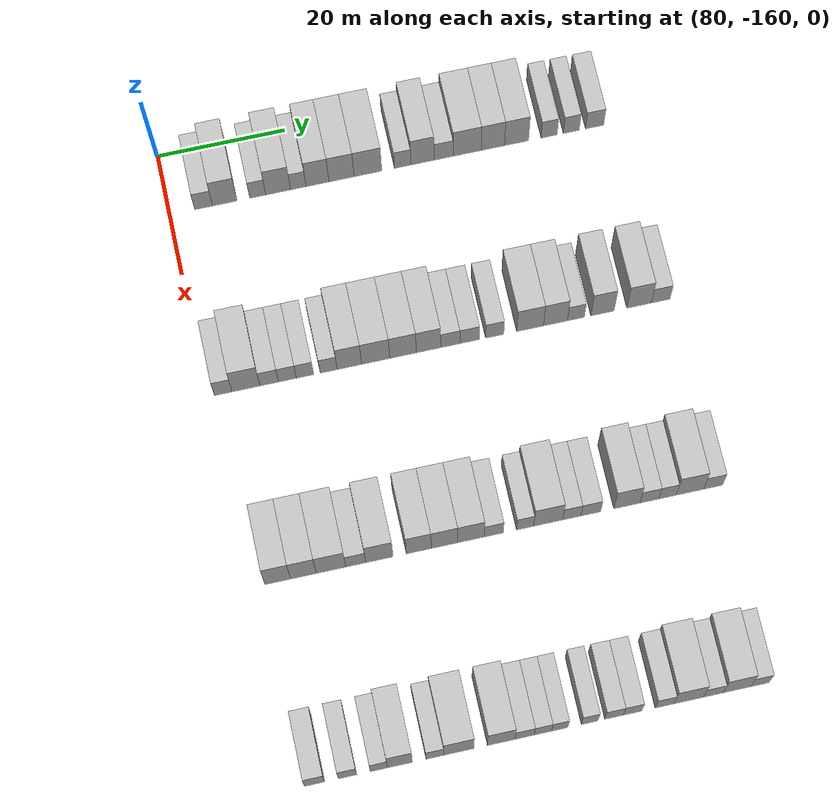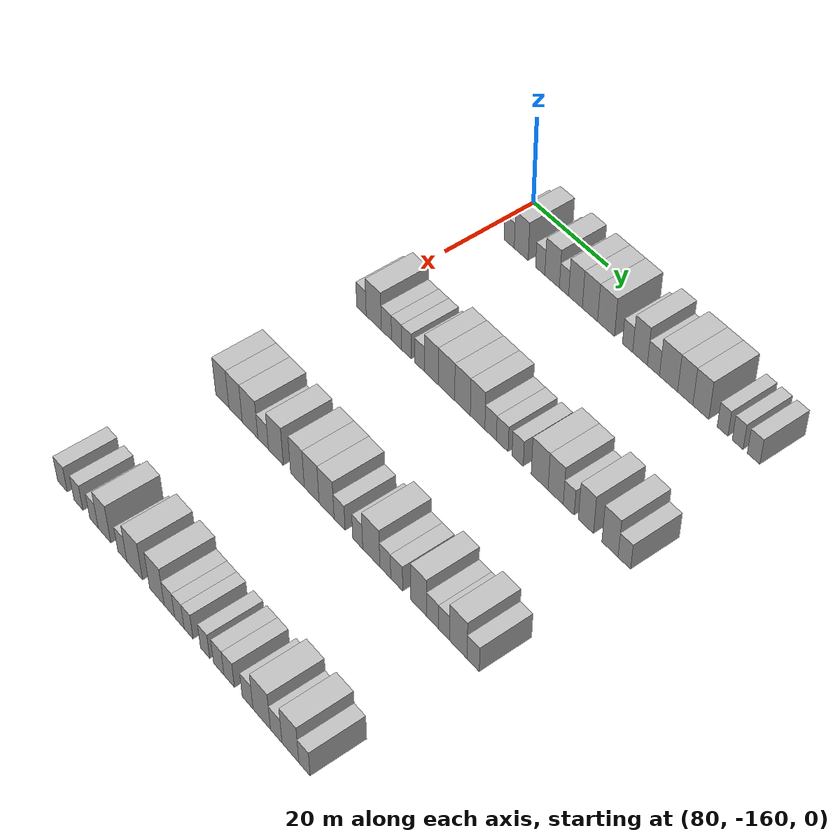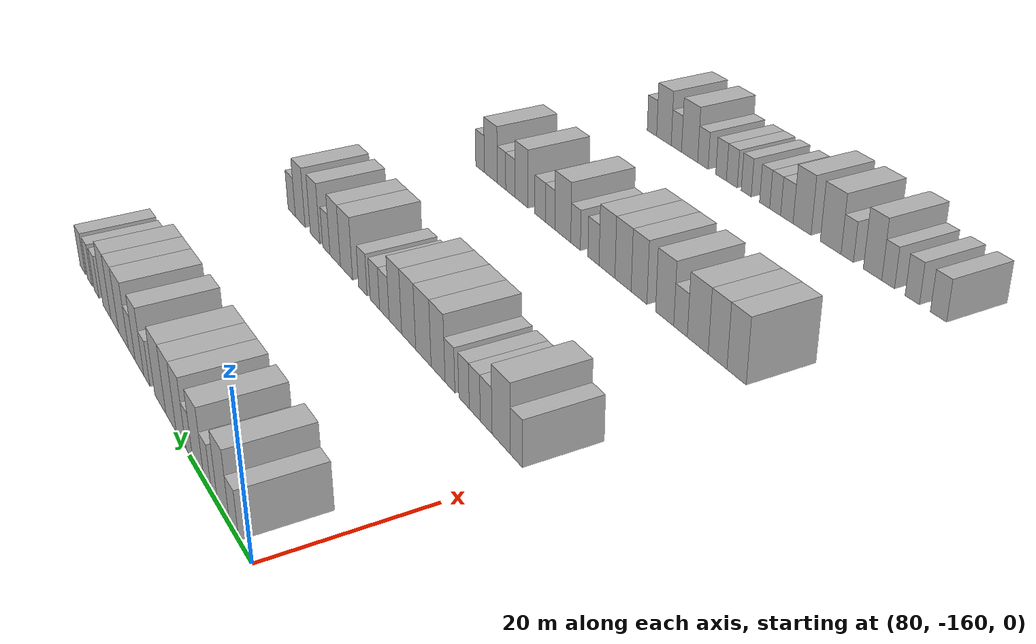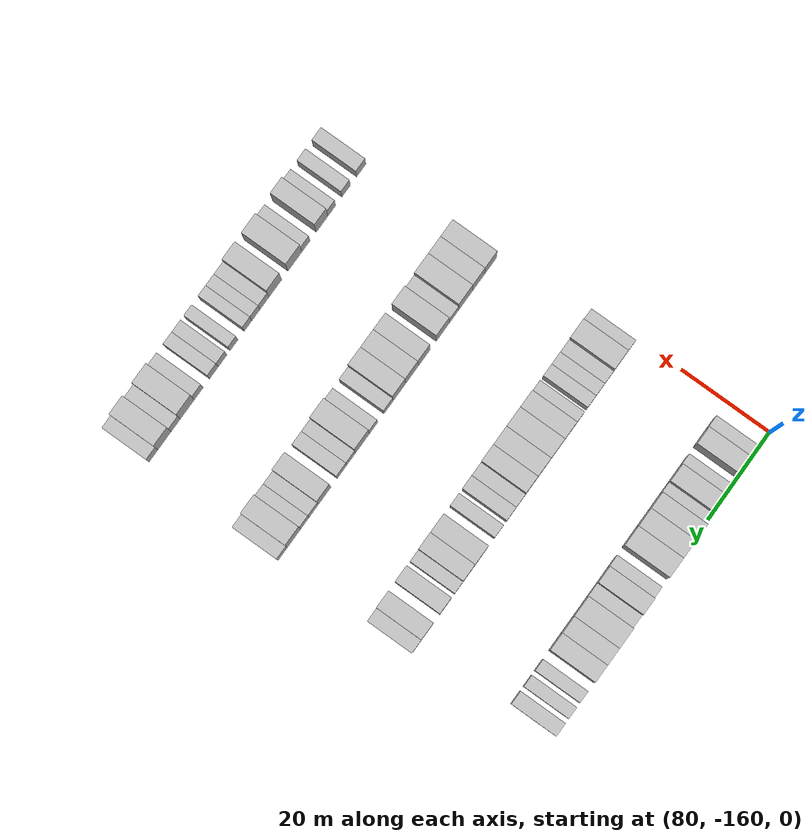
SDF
<sdf version="1.6">
 <world name="default">
  <model name="building_521">
   <static>1</static>
   <pose>85.0000 -154.6689 0 0.000000 0.000000 0.000000</pose>
   <link name="link">
    <pose>0 0 3.00 0 0 0</pose>
    <collision name="collision"><geometry><box><size>10.0000 2.7966 6.0000</size></box></geometry></collision>
    <visual name="visual">
     <cast_shadows>0</cast_shadows>
     <geometry><box><size>10.0000 2.7966 6.0000</size></box></geometry>
     <material>
      <script>
       <uri>model://HANNAS_wall/materials/scripts</uri>
       <uri>model://HANNAS_wall/materials/textures</uri>
       <name>vrc/HANNAS_wall</name>
      </script>
     </material>
    </visual>
   </link>
  </model>
  <model name="building_522">
   <static>1</static>
   <pose>85.0000 -151.3631 0 0.000000 0.000000 0.000000</pose>
   <link name="link">
    <pose>0 0 4.50 0 0 0</pose>
    <collision name="collision"><geometry><box><size>10.0000 3.8148 9.0000</size></box></geometry></collision>
    <visual name="visual">
     <cast_shadows>0</cast_shadows>
     <geometry><box><size>10.0000 3.8148 9.0000</size></box></geometry>
     <material>
      <script>
       <uri>model://HANNAS_wall/materials/scripts</uri>
       <uri>model://HANNAS_wall/materials/textures</uri>
       <name>vrc/HANNAS_wall</name>
      </script>
     </material>
    </visual>
   </link>
  </model>
  <model name="building_523">
   <static>1</static>
   <pose>85.0000 -146.2067 0 0.000000 0.000000 0.000000</pose>
   <link name="link">
    <pose>0 0 3.00 0 0 0</pose>
    <collision name="collision"><geometry><box><size>10.0000 2.4981 6.0000</size></box></geometry></collision>
    <visual name="visual">
     <cast_shadows>0</cast_shadows>
     <geometry><box><size>10.0000 2.4981 6.0000</size></box></geometry>
     <material>
      <script>
       <uri>model://HANNAS_wall/materials/scripts</uri>
       <uri>model://HANNAS_wall/materials/textures</uri>
       <name>vrc/HANNAS_wall</name>
      </script>
     </material>
    </visual>
   </link>
  </model>
  <model name="building_524">
   <static>1</static>
   <pose>85.0000 -143.0126 0 0.000000 0.000000 0.000000</pose>
   <link name="link">
    <pose>0 0 4.50 0 0 0</pose>
    <collision name="collision"><geometry><box><size>10.0000 3.8899 9.0000</size></box></geometry></collision>
    <visual name="visual">
     <cast_shadows>0</cast_shadows>
     <geometry><box><size>10.0000 3.8899 9.0000</size></box></geometry>
     <material>
      <script>
       <uri>model://HANNAS_wall/materials/scripts</uri>
       <uri>model://HANNAS_wall/materials/textures</uri>
       <name>vrc/HANNAS_wall</name>
      </script>
     </material>
    </visual>
   </link>
  </model>
  <model name="building_525">
   <static>1</static>
   <pose>85.0000 -139.8485 0 0.000000 0.000000 0.000000</pose>
   <link name="link">
    <pose>0 0 3.00 0 0 0</pose>
    <collision name="collision"><geometry><box><size>10.0000 2.4385 6.0000</size></box></geometry></collision>
    <visual name="visual">
     <cast_shadows>0</cast_shadows>
     <geometry><box><size>10.0000 2.4385 6.0000</size></box></geometry>
     <material>
      <script>
       <uri>model://HANNAS_wall/materials/scripts</uri>
       <uri>model://HANNAS_wall/materials/textures</uri>
       <name>vrc/HANNAS_wall</name>
      </script>
     </material>
    </visual>
   </link>
  </model>
  <model name="building_526">
   <static>1</static>
   <pose>85.0000 -136.8250 0 0.000000 0.000000 0.000000</pose>
   <link name="link">
    <pose>0 0 4.50 0 0 0</pose>
    <collision name="collision"><geometry><box><size>10.0000 3.6083 9.0000</size></box></geometry></collision>
    <visual name="visual">
     <cast_shadows>0</cast_shadows>
     <geometry><box><size>10.0000 3.6083 9.0000</size></box></geometry>
     <material>
      <script>
       <uri>model://HANNAS_wall/materials/scripts</uri>
       <uri>model://HANNAS_wall/materials/textures</uri>
       <name>vrc/HANNAS_wall</name>
      </script>
     </material>
    </visual>
   </link>
  </model>
  <model name="building_527">
   <static>1</static>
   <pose>85.0000 -133.0406 0 0.000000 0.000000 0.000000</pose>
   <link name="link">
    <pose>0 0 4.50 0 0 0</pose>
    <collision name="collision"><geometry><box><size>10.0000 3.9606 9.0000</size></box></geometry></collision>
    <visual name="visual">
     <cast_shadows>0</cast_shadows>
     <geometry><box><size>10.0000 3.9606 9.0000</size></box></geometry>
     <material>
      <script>
       <uri>model://HANNAS_wall/materials/scripts</uri>
       <uri>model://HANNAS_wall/materials/textures</uri>
       <name>vrc/HANNAS_wall</name>
      </script>
     </material>
    </visual>
   </link>
  </model>
  <model name="building_528">
   <static>1</static>
   <pose>85.0000 -128.8823 0 0.000000 0.000000 0.000000</pose>
   <link name="link">
    <pose>0 0 4.50 0 0 0</pose>
    <collision name="collision"><geometry><box><size>10.0000 4.3559 9.0000</size></box></geometry></collision>
    <visual name="visual">
     <cast_shadows>0</cast_shadows>
     <geometry><box><size>10.0000 4.3559 9.0000</size></box></geometry>
     <material>
      <script>
       <uri>model://HANNAS_wall/materials/scripts</uri>
       <uri>model://HANNAS_wall/materials/textures</uri>
       <name>vrc/HANNAS_wall</name>
      </script>
     </material>
    </visual>
   </link>
  </model>
  <model name="building_529">
   <static>1</static>
   <pose>85.0000 -123.4022 0 0.000000 0.000000 0.000000</pose>
   <link name="link">
    <pose>0 0 3.00 0 0 0</pose>
    <collision name="collision"><geometry><box><size>10.0000 2.6042 6.0000</size></box></geometry></collision>
    <visual name="visual">
     <cast_shadows>0</cast_shadows>
     <geometry><box><size>10.0000 2.6042 6.0000</size></box></geometry>
     <material>
      <script>
       <uri>model://HANNAS_wall/materials/scripts</uri>
       <uri>model://HANNAS_wall/materials/textures</uri>
       <name>vrc/HANNAS_wall</name>
      </script>
     </material>
    </visual>
   </link>
  </model>
  <model name="building_530">
   <static>1</static>
   <pose>85.0000 -120.2660 0 0.000000 0.000000 0.000000</pose>
   <link name="link">
    <pose>0 0 4.50 0 0 0</pose>
    <collision name="collision"><geometry><box><size>10.0000 3.6681 9.0000</size></box></geometry></collision>
    <visual name="visual">
     <cast_shadows>0</cast_shadows>
     <geometry><box><size>10.0000 3.6681 9.0000</size></box></geometry>
     <material>
      <script>
       <uri>model://HANNAS_wall/materials/scripts</uri>
       <uri>model://HANNAS_wall/materials/textures</uri>
       <name>vrc/HANNAS_wall</name>
      </script>
     </material>
    </visual>
   </link>
  </model>
  <model name="building_531">
   <static>1</static>
   <pose>85.0000 -116.9334 0 0.000000 0.000000 0.000000</pose>
   <link name="link">
    <pose>0 0 3.00 0 0 0</pose>
    <collision name="collision"><geometry><box><size>10.0000 2.9970 6.0000</size></box></geometry></collision>
    <visual name="visual">
     <cast_shadows>0</cast_shadows>
     <geometry><box><size>10.0000 2.9970 6.0000</size></box></geometry>
     <material>
      <script>
       <uri>model://HANNAS_wall/materials/scripts</uri>
       <uri>model://HANNAS_wall/materials/textures</uri>
       <name>vrc/HANNAS_wall</name>
      </script>
     </material>
    </visual>
   </link>
  </model>
  <model name="building_532">
   <static>1</static>
   <pose>85.0000 -113.2058 0 0.000000 0.000000 0.000000</pose>
   <link name="link">
    <pose>0 0 4.50 0 0 0</pose>
    <collision name="collision"><geometry><box><size>10.0000 4.4582 9.0000</size></box></geometry></collision>
    <visual name="visual">
     <cast_shadows>0</cast_shadows>
     <geometry><box><size>10.0000 4.4582 9.0000</size></box></geometry>
     <material>
      <script>
       <uri>model://HANNAS_wall/materials/scripts</uri>
       <uri>model://HANNAS_wall/materials/textures</uri>
       <name>vrc/HANNAS_wall</name>
      </script>
     </material>
    </visual>
   </link>
  </model>
  <model name="building_533">
   <static>1</static>
   <pose>85.0000 -109.1233 0 0.000000 0.000000 0.000000</pose>
   <link name="link">
    <pose>0 0 4.50 0 0 0</pose>
    <collision name="collision"><geometry><box><size>10.0000 3.7070 9.0000</size></box></geometry></collision>
    <visual name="visual">
     <cast_shadows>0</cast_shadows>
     <geometry><box><size>10.0000 3.7070 9.0000</size></box></geometry>
     <material>
      <script>
       <uri>model://HANNAS_wall/materials/scripts</uri>
       <uri>model://HANNAS_wall/materials/textures</uri>
       <name>vrc/HANNAS_wall</name>
      </script>
     </material>
    </visual>
   </link>
  </model>
  <model name="building_534">
   <static>1</static>
   <pose>85.0000 -105.3576 0 0.000000 0.000000 0.000000</pose>
   <link name="link">
    <pose>0 0 4.50 0 0 0</pose>
    <collision name="collision"><geometry><box><size>10.0000 3.8244 9.0000</size></box></geometry></collision>
    <visual name="visual">
     <cast_shadows>0</cast_shadows>
     <geometry><box><size>10.0000 3.8244 9.0000</size></box></geometry>
     <material>
      <script>
       <uri>model://HANNAS_wall/materials/scripts</uri>
       <uri>model://HANNAS_wall/materials/textures</uri>
       <name>vrc/HANNAS_wall</name>
      </script>
     </material>
    </visual>
   </link>
  </model>
  <model name="building_535">
   <static>1</static>
   <pose>85.0000 -100.1749 0 0.000000 0.000000 0.000000</pose>
   <link name="link">
    <pose>0 0 3.00 0 0 0</pose>
    <collision name="collision"><geometry><box><size>10.0000 2.5411 6.0000</size></box></geometry></collision>
    <visual name="visual">
     <cast_shadows>0</cast_shadows>
     <geometry><box><size>10.0000 2.5411 6.0000</size></box></geometry>
     <material>
      <script>
       <uri>model://HANNAS_wall/materials/scripts</uri>
       <uri>model://HANNAS_wall/materials/textures</uri>
       <name>vrc/HANNAS_wall</name>
      </script>
     </material>
    </visual>
   </link>
  </model>
  <model name="building_536">
   <static>1</static>
   <pose>85.0000 -96.6365 0 0.000000 0.000000 0.000000</pose>
   <link name="link">
    <pose>0 0 3.00 0 0 0</pose>
    <collision name="collision"><geometry><box><size>10.0000 2.5357 6.0000</size></box></geometry></collision>
    <visual name="visual">
     <cast_shadows>0</cast_shadows>
     <geometry><box><size>10.0000 2.5357 6.0000</size></box></geometry>
     <material>
      <script>
       <uri>model://HANNAS_wall/materials/scripts</uri>
       <uri>model://HANNAS_wall/materials/textures</uri>
       <name>vrc/HANNAS_wall</name>
      </script>
     </material>
    </visual>
   </link>
  </model>
  <model name="building_537">
   <static>1</static>
   <pose>85.0000 -92.9179 0 0.000000 0.000000 0.000000</pose>
   <link name="link">
    <pose>0 0 3.00 0 0 0</pose>
    <collision name="collision"><geometry><box><size>10.0000 2.9013 6.0000</size></box></geometry></collision>
    <visual name="visual">
     <cast_shadows>0</cast_shadows>
     <geometry><box><size>10.0000 2.9013 6.0000</size></box></geometry>
     <material>
      <script>
       <uri>model://HANNAS_wall/materials/scripts</uri>
       <uri>model://HANNAS_wall/materials/textures</uri>
       <name>vrc/HANNAS_wall</name>
      </script>
     </material>
    </visual>
   </link>
  </model>
  <model name="building_750">
   <static>1</static>
   <pose>115.0000 -157.4065 0 0.000000 0.000000 0.000000</pose>
   <link name="link">
    <pose>0 0 3.00 0 0 0</pose>
    <collision name="collision"><geometry><box><size>10.0000 2.6969 6.0000</size></box></geometry></collision>
    <visual name="visual">
     <cast_shadows>0</cast_shadows>
     <geometry><box><size>10.0000 2.6969 6.0000</size></box></geometry>
     <material>
      <script>
       <uri>model://HANNAS_wall/materials/scripts</uri>
       <uri>model://HANNAS_wall/materials/textures</uri>
       <name>vrc/HANNAS_wall</name>
      </script>
     </material>
    </visual>
   </link>
  </model>
  <model name="building_751">
   <static>1</static>
   <pose>115.0000 -153.9230 0 0.000000 0.000000 0.000000</pose>
   <link name="link">
    <pose>0 0 4.50 0 0 0</pose>
    <collision name="collision"><geometry><box><size>10.0000 4.2702 9.0000</size></box></geometry></collision>
    <visual name="visual">
     <cast_shadows>0</cast_shadows>
     <geometry><box><size>10.0000 4.2702 9.0000</size></box></geometry>
     <material>
      <script>
       <uri>model://HANNAS_wall/materials/scripts</uri>
       <uri>model://HANNAS_wall/materials/textures</uri>
       <name>vrc/HANNAS_wall</name>
      </script>
     </material>
    </visual>
   </link>
  </model>
  <model name="building_752">
   <static>1</static>
   <pose>115.0000 -150.3738 0 0.000000 0.000000 0.000000</pose>
   <link name="link">
    <pose>0 0 3.00 0 0 0</pose>
    <collision name="collision"><geometry><box><size>10.0000 2.8281 6.0000</size></box></geometry></collision>
    <visual name="visual">
     <cast_shadows>0</cast_shadows>
     <geometry><box><size>10.0000 2.8281 6.0000</size></box></geometry>
     <material>
      <script>
       <uri>model://HANNAS_wall/materials/scripts</uri>
       <uri>model://HANNAS_wall/materials/textures</uri>
       <name>vrc/HANNAS_wall</name>
      </script>
     </material>
    </visual>
   </link>
  </model>
  <model name="building_753">
   <static>1</static>
   <pose>115.0000 -147.5938 0 0.000000 0.000000 0.000000</pose>
   <link name="link">
    <pose>0 0 3.00 0 0 0</pose>
    <collision name="collision"><geometry><box><size>10.0000 2.7320 6.0000</size></box></geometry></collision>
    <visual name="visual">
     <cast_shadows>0</cast_shadows>
     <geometry><box><size>10.0000 2.7320 6.0000</size></box></geometry>
     <material>
      <script>
       <uri>model://HANNAS_wall/materials/scripts</uri>
       <uri>model://HANNAS_wall/materials/textures</uri>
       <name>vrc/HANNAS_wall</name>
      </script>
     </material>
    </visual>
   </link>
  </model>
  <model name="building_754">
   <static>1</static>
   <pose>115.0000 -144.8966 0 0.000000 0.000000 0.000000</pose>
   <link name="link">
    <pose>0 0 3.00 0 0 0</pose>
    <collision name="collision"><geometry><box><size>10.0000 2.6626 6.0000</size></box></geometry></collision>
    <visual name="visual">
     <cast_shadows>0</cast_shadows>
     <geometry><box><size>10.0000 2.6626 6.0000</size></box></geometry>
     <material>
      <script>
       <uri>model://HANNAS_wall/materials/scripts</uri>
       <uri>model://HANNAS_wall/materials/textures</uri>
       <name>vrc/HANNAS_wall</name>
      </script>
     </material>
    </visual>
   </link>
  </model>
  <model name="building_755">
   <static>1</static>
   <pose>115.0000 -141.2707 0 0.000000 0.000000 0.000000</pose>
   <link name="link">
    <pose>0 0 3.00 0 0 0</pose>
    <collision name="collision"><geometry><box><size>10.0000 2.5890 6.0000</size></box></geometry></collision>
    <visual name="visual">
     <cast_shadows>0</cast_shadows>
     <geometry><box><size>10.0000 2.5890 6.0000</size></box></geometry>
     <material>
      <script>
       <uri>model://HANNAS_wall/materials/scripts</uri>
       <uri>model://HANNAS_wall/materials/textures</uri>
       <name>vrc/HANNAS_wall</name>
      </script>
     </material>
    </visual>
   </link>
  </model>
  <model name="building_756">
   <static>1</static>
   <pose>115.0000 -138.0910 0 0.000000 0.000000 0.000000</pose>
   <link name="link">
    <pose>0 0 4.50 0 0 0</pose>
    <collision name="collision"><geometry><box><size>10.0000 3.7706 9.0000</size></box></geometry></collision>
    <visual name="visual">
     <cast_shadows>0</cast_shadows>
     <geometry><box><size>10.0000 3.7706 9.0000</size></box></geometry>
     <material>
      <script>
       <uri>model://HANNAS_wall/materials/scripts</uri>
       <uri>model://HANNAS_wall/materials/textures</uri>
       <name>vrc/HANNAS_wall</name>
      </script>
     </material>
    </visual>
   </link>
  </model>
  <model name="building_757">
   <static>1</static>
   <pose>115.0000 -134.0444 0 0.000000 0.000000 0.000000</pose>
   <link name="link">
    <pose>0 0 4.50 0 0 0</pose>
    <collision name="collision"><geometry><box><size>10.0000 4.3225 9.0000</size></box></geometry></collision>
    <visual name="visual">
     <cast_shadows>0</cast_shadows>
     <geometry><box><size>10.0000 4.3225 9.0000</size></box></geometry>
     <material>
      <script>
       <uri>model://HANNAS_wall/materials/scripts</uri>
       <uri>model://HANNAS_wall/materials/textures</uri>
       <name>vrc/HANNAS_wall</name>
      </script>
     </material>
    </visual>
   </link>
  </model>
  <model name="building_758">
   <static>1</static>
   <pose>115.0000 -129.8395 0 0.000000 0.000000 0.000000</pose>
   <link name="link">
    <pose>0 0 4.50 0 0 0</pose>
    <collision name="collision"><geometry><box><size>10.0000 4.0874 9.0000</size></box></geometry></collision>
    <visual name="visual">
     <cast_shadows>0</cast_shadows>
     <geometry><box><size>10.0000 4.0874 9.0000</size></box></geometry>
     <material>
      <script>
       <uri>model://HANNAS_wall/materials/scripts</uri>
       <uri>model://HANNAS_wall/materials/textures</uri>
       <name>vrc/HANNAS_wall</name>
      </script>
     </material>
    </visual>
   </link>
  </model>
  <model name="building_759">
   <static>1</static>
   <pose>115.0000 -125.9115 0 0.000000 0.000000 0.000000</pose>
   <link name="link">
    <pose>0 0 4.50 0 0 0</pose>
    <collision name="collision"><geometry><box><size>10.0000 3.7687 9.0000</size></box></geometry></collision>
    <visual name="visual">
     <cast_shadows>0</cast_shadows>
     <geometry><box><size>10.0000 3.7687 9.0000</size></box></geometry>
     <material>
      <script>
       <uri>model://HANNAS_wall/materials/scripts</uri>
       <uri>model://HANNAS_wall/materials/textures</uri>
       <name>vrc/HANNAS_wall</name>
      </script>
     </material>
    </visual>
   </link>
  </model>
  <model name="building_760">
   <static>1</static>
   <pose>115.0000 -122.5497 0 0.000000 0.000000 0.000000</pose>
   <link name="link">
    <pose>0 0 3.00 0 0 0</pose>
    <collision name="collision"><geometry><box><size>10.0000 2.9549 6.0000</size></box></geometry></collision>
    <visual name="visual">
     <cast_shadows>0</cast_shadows>
     <geometry><box><size>10.0000 2.9549 6.0000</size></box></geometry>
     <material>
      <script>
       <uri>model://HANNAS_wall/materials/scripts</uri>
       <uri>model://HANNAS_wall/materials/textures</uri>
       <name>vrc/HANNAS_wall</name>
      </script>
     </material>
    </visual>
   </link>
  </model>
  <model name="building_761">
   <static>1</static>
   <pose>115.0000 -119.5809 0 0.000000 0.000000 0.000000</pose>
   <link name="link">
    <pose>0 0 3.00 0 0 0</pose>
    <collision name="collision"><geometry><box><size>10.0000 2.9825 6.0000</size></box></geometry></collision>
    <visual name="visual">
     <cast_shadows>0</cast_shadows>
     <geometry><box><size>10.0000 2.9825 6.0000</size></box></geometry>
     <material>
      <script>
       <uri>model://HANNAS_wall/materials/scripts</uri>
       <uri>model://HANNAS_wall/materials/textures</uri>
       <name>vrc/HANNAS_wall</name>
      </script>
     </material>
    </visual>
   </link>
  </model>
  <model name="building_762">
   <static>1</static>
   <pose>115.0000 -115.6846 0 0.000000 0.000000 0.000000</pose>
   <link name="link">
    <pose>0 0 3.00 0 0 0</pose>
    <collision name="collision"><geometry><box><size>10.0000 2.8101 6.0000</size></box></geometry></collision>
    <visual name="visual">
     <cast_shadows>0</cast_shadows>
     <geometry><box><size>10.0000 2.8101 6.0000</size></box></geometry>
     <material>
      <script>
       <uri>model://HANNAS_wall/materials/scripts</uri>
       <uri>model://HANNAS_wall/materials/textures</uri>
       <name>vrc/HANNAS_wall</name>
      </script>
     </material>
    </visual>
   </link>
  </model>
  <model name="building_763">
   <static>1</static>
   <pose>115.0000 -110.1991 0 0.000000 0.000000 0.000000</pose>
   <link name="link">
    <pose>0 0 4.50 0 0 0</pose>
    <collision name="collision"><geometry><box><size>10.0000 4.1610 9.0000</size></box></geometry></collision>
    <visual name="visual">
     <cast_shadows>0</cast_shadows>
     <geometry><box><size>10.0000 4.1610 9.0000</size></box></geometry>
     <material>
      <script>
       <uri>model://HANNAS_wall/materials/scripts</uri>
       <uri>model://HANNAS_wall/materials/textures</uri>
       <name>vrc/HANNAS_wall</name>
      </script>
     </material>
    </visual>
   </link>
  </model>
  <model name="building_764">
   <static>1</static>
   <pose>115.0000 -106.2601 0 0.000000 0.000000 0.000000</pose>
   <link name="link">
    <pose>0 0 4.50 0 0 0</pose>
    <collision name="collision"><geometry><box><size>10.0000 3.7169 9.0000</size></box></geometry></collision>
    <visual name="visual">
     <cast_shadows>0</cast_shadows>
     <geometry><box><size>10.0000 3.7169 9.0000</size></box></geometry>
     <material>
      <script>
       <uri>model://HANNAS_wall/materials/scripts</uri>
       <uri>model://HANNAS_wall/materials/textures</uri>
       <name>vrc/HANNAS_wall</name>
      </script>
     </material>
    </visual>
   </link>
  </model>
  <model name="building_765">
   <static>1</static>
   <pose>115.0000 -103.0785 0 0.000000 0.000000 0.000000</pose>
   <link name="link">
    <pose>0 0 3.00 0 0 0</pose>
    <collision name="collision"><geometry><box><size>10.0000 2.6465 6.0000</size></box></geometry></collision>
    <visual name="visual">
     <cast_shadows>0</cast_shadows>
     <geometry><box><size>10.0000 2.6465 6.0000</size></box></geometry>
     <material>
      <script>
       <uri>model://HANNAS_wall/materials/scripts</uri>
       <uri>model://HANNAS_wall/materials/textures</uri>
       <name>vrc/HANNAS_wall</name>
      </script>
     </material>
    </visual>
   </link>
  </model>
  <model name="building_766">
   <static>1</static>
   <pose>115.0000 -98.9481 0 0.000000 0.000000 0.000000</pose>
   <link name="link">
    <pose>0 0 4.50 0 0 0</pose>
    <collision name="collision"><geometry><box><size>10.0000 3.6141 9.0000</size></box></geometry></collision>
    <visual name="visual">
     <cast_shadows>0</cast_shadows>
     <geometry><box><size>10.0000 3.6141 9.0000</size></box></geometry>
     <material>
      <script>
       <uri>model://HANNAS_wall/materials/scripts</uri>
       <uri>model://HANNAS_wall/materials/textures</uri>
       <name>vrc/HANNAS_wall</name>
      </script>
     </material>
    </visual>
   </link>
  </model>
  <model name="building_767">
   <static>1</static>
   <pose>115.0000 -93.2434 0 0.000000 0.000000 0.000000</pose>
   <link name="link">
    <pose>0 0 4.50 0 0 0</pose>
    <collision name="collision"><geometry><box><size>10.0000 3.7954 9.0000</size></box></geometry></collision>
    <visual name="visual">
     <cast_shadows>0</cast_shadows>
     <geometry><box><size>10.0000 3.7954 9.0000</size></box></geometry>
     <material>
      <script>
       <uri>model://HANNAS_wall/materials/scripts</uri>
       <uri>model://HANNAS_wall/materials/textures</uri>
       <name>vrc/HANNAS_wall</name>
      </script>
     </material>
    </visual>
   </link>
  </model>
  <model name="building_768">
   <static>1</static>
   <pose>115.0000 -89.8817 0 0.000000 0.000000 0.000000</pose>
   <link name="link">
    <pose>0 0 3.00 0 0 0</pose>
    <collision name="collision"><geometry><box><size>10.0000 2.9279 6.0000</size></box></geometry></collision>
    <visual name="visual">
     <cast_shadows>0</cast_shadows>
     <geometry><box><size>10.0000 2.9279 6.0000</size></box></geometry>
     <material>
      <script>
       <uri>model://HANNAS_wall/materials/scripts</uri>
       <uri>model://HANNAS_wall/materials/textures</uri>
       <name>vrc/HANNAS_wall</name>
      </script>
     </material>
    </visual>
   </link>
  </model>
  <model name="building_983">
   <static>1</static>
   <pose>145.0000 -155.0668 0 0.000000 0.000000 0.000000</pose>
   <link name="link">
    <pose>0 0 4.50 0 0 0</pose>
    <collision name="collision"><geometry><box><size>10.0000 3.8070 9.0000</size></box></geometry></collision>
    <visual name="visual">
     <cast_shadows>0</cast_shadows>
     <geometry><box><size>10.0000 3.8070 9.0000</size></box></geometry>
     <material>
      <script>
       <uri>model://HANNAS_wall/materials/scripts</uri>
       <uri>model://HANNAS_wall/materials/textures</uri>
       <name>vrc/HANNAS_wall</name>
      </script>
     </material>
    </visual>
   </link>
  </model>
  <model name="building_984">
   <static>1</static>
   <pose>145.0000 -151.2473 0 0.000000 0.000000 0.000000</pose>
   <link name="link">
    <pose>0 0 4.50 0 0 0</pose>
    <collision name="collision"><geometry><box><size>10.0000 3.8318 9.0000</size></box></geometry></collision>
    <visual name="visual">
     <cast_shadows>0</cast_shadows>
     <geometry><box><size>10.0000 3.8318 9.0000</size></box></geometry>
     <material>
      <script>
       <uri>model://HANNAS_wall/materials/scripts</uri>
       <uri>model://HANNAS_wall/materials/textures</uri>
       <name>vrc/HANNAS_wall</name>
      </script>
     </material>
    </visual>
   </link>
  </model>
  <model name="building_985">
   <static>1</static>
   <pose>145.0000 -147.1207 0 0.000000 0.000000 0.000000</pose>
   <link name="link">
    <pose>0 0 4.50 0 0 0</pose>
    <collision name="collision"><geometry><box><size>10.0000 4.4214 9.0000</size></box></geometry></collision>
    <visual name="visual">
     <cast_shadows>0</cast_shadows>
     <geometry><box><size>10.0000 4.4214 9.0000</size></box></geometry>
     <material>
      <script>
       <uri>model://HANNAS_wall/materials/scripts</uri>
       <uri>model://HANNAS_wall/materials/textures</uri>
       <name>vrc/HANNAS_wall</name>
      </script>
     </material>
    </visual>
   </link>
  </model>
  <model name="building_986">
   <static>1</static>
   <pose>145.0000 -143.4240 0 0.000000 0.000000 0.000000</pose>
   <link name="link">
    <pose>0 0 3.00 0 0 0</pose>
    <collision name="collision"><geometry><box><size>10.0000 2.9721 6.0000</size></box></geometry></collision>
    <visual name="visual">
     <cast_shadows>0</cast_shadows>
     <geometry><box><size>10.0000 2.9721 6.0000</size></box></geometry>
     <material>
      <script>
       <uri>model://HANNAS_wall/materials/scripts</uri>
       <uri>model://HANNAS_wall/materials/textures</uri>
       <name>vrc/HANNAS_wall</name>
      </script>
     </material>
    </visual>
   </link>
  </model>
  <model name="building_987">
   <static>1</static>
   <pose>145.0000 -139.8872 0 0.000000 0.000000 0.000000</pose>
   <link name="link">
    <pose>0 0 4.50 0 0 0</pose>
    <collision name="collision"><geometry><box><size>10.0000 4.1014 9.0000</size></box></geometry></collision>
    <visual name="visual">
     <cast_shadows>0</cast_shadows>
     <geometry><box><size>10.0000 4.1014 9.0000</size></box></geometry>
     <material>
      <script>
       <uri>model://HANNAS_wall/materials/scripts</uri>
       <uri>model://HANNAS_wall/materials/textures</uri>
       <name>vrc/HANNAS_wall</name>
      </script>
     </material>
    </visual>
   </link>
  </model>
  <model name="building_988">
   <static>1</static>
   <pose>145.0000 -133.9652 0 0.000000 0.000000 0.000000</pose>
   <link name="link">
    <pose>0 0 4.50 0 0 0</pose>
    <collision name="collision"><geometry><box><size>10.0000 3.7427 9.0000</size></box></geometry></collision>
    <visual name="visual">
     <cast_shadows>0</cast_shadows>
     <geometry><box><size>10.0000 3.7427 9.0000</size></box></geometry>
     <material>
      <script>
       <uri>model://HANNAS_wall/materials/scripts</uri>
       <uri>model://HANNAS_wall/materials/textures</uri>
       <name>vrc/HANNAS_wall</name>
      </script>
     </material>
    </visual>
   </link>
  </model>
  <model name="building_989">
   <static>1</static>
   <pose>145.0000 -130.1126 0 0.000000 0.000000 0.000000</pose>
   <link name="link">
    <pose>0 0 4.50 0 0 0</pose>
    <collision name="collision"><geometry><box><size>10.0000 3.9626 9.0000</size></box></geometry></collision>
    <visual name="visual">
     <cast_shadows>0</cast_shadows>
     <geometry><box><size>10.0000 3.9626 9.0000</size></box></geometry>
     <material>
      <script>
       <uri>model://HANNAS_wall/materials/scripts</uri>
       <uri>model://HANNAS_wall/materials/textures</uri>
       <name>vrc/HANNAS_wall</name>
      </script>
     </material>
    </visual>
   </link>
  </model>
  <model name="building_990">
   <static>1</static>
   <pose>145.0000 -126.1317 0 0.000000 0.000000 0.000000</pose>
   <link name="link">
    <pose>0 0 4.50 0 0 0</pose>
    <collision name="collision"><geometry><box><size>10.0000 3.9993 9.0000</size></box></geometry></collision>
    <visual name="visual">
     <cast_shadows>0</cast_shadows>
     <geometry><box><size>10.0000 3.9993 9.0000</size></box></geometry>
     <material>
      <script>
       <uri>model://HANNAS_wall/materials/scripts</uri>
       <uri>model://HANNAS_wall/materials/textures</uri>
       <name>vrc/HANNAS_wall</name>
      </script>
     </material>
    </visual>
   </link>
  </model>
  <model name="building_991">
   <static>1</static>
   <pose>145.0000 -122.6904 0 0.000000 0.000000 0.000000</pose>
   <link name="link">
    <pose>0 0 3.00 0 0 0</pose>
    <collision name="collision"><geometry><box><size>10.0000 2.8833 6.0000</size></box></geometry></collision>
    <visual name="visual">
     <cast_shadows>0</cast_shadows>
     <geometry><box><size>10.0000 2.8833 6.0000</size></box></geometry>
     <material>
      <script>
       <uri>model://HANNAS_wall/materials/scripts</uri>
       <uri>model://HANNAS_wall/materials/textures</uri>
       <name>vrc/HANNAS_wall</name>
      </script>
     </material>
    </visual>
   </link>
  </model>
  <model name="building_992">
   <static>1</static>
   <pose>145.0000 -117.9561 0 0.000000 0.000000 0.000000</pose>
   <link name="link">
    <pose>0 0 3.00 0 0 0</pose>
    <collision name="collision"><geometry><box><size>10.0000 2.5853 6.0000</size></box></geometry></collision>
    <visual name="visual">
     <cast_shadows>0</cast_shadows>
     <geometry><box><size>10.0000 2.5853 6.0000</size></box></geometry>
     <material>
      <script>
       <uri>model://HANNAS_wall/materials/scripts</uri>
       <uri>model://HANNAS_wall/materials/textures</uri>
       <name>vrc/HANNAS_wall</name>
      </script>
     </material>
    </visual>
   </link>
  </model>
  <model name="building_993">
   <static>1</static>
   <pose>145.0000 -114.4675 0 0.000000 0.000000 0.000000</pose>
   <link name="link">
    <pose>0 0 4.50 0 0 0</pose>
    <collision name="collision"><geometry><box><size>10.0000 4.3919 9.0000</size></box></geometry></collision>
    <visual name="visual">
     <cast_shadows>0</cast_shadows>
     <geometry><box><size>10.0000 4.3919 9.0000</size></box></geometry>
     <material>
      <script>
       <uri>model://HANNAS_wall/materials/scripts</uri>
       <uri>model://HANNAS_wall/materials/textures</uri>
       <name>vrc/HANNAS_wall</name>
      </script>
     </material>
    </visual>
   </link>
  </model>
  <model name="building_994">
   <static>1</static>
   <pose>145.0000 -110.8892 0 0.000000 0.000000 0.000000</pose>
   <link name="link">
    <pose>0 0 3.00 0 0 0</pose>
    <collision name="collision"><geometry><box><size>10.0000 2.7646 6.0000</size></box></geometry></collision>
    <visual name="visual">
     <cast_shadows>0</cast_shadows>
     <geometry><box><size>10.0000 2.7646 6.0000</size></box></geometry>
     <material>
      <script>
       <uri>model://HANNAS_wall/materials/scripts</uri>
       <uri>model://HANNAS_wall/materials/textures</uri>
       <name>vrc/HANNAS_wall</name>
      </script>
     </material>
    </visual>
   </link>
  </model>
  <model name="building_995">
   <static>1</static>
   <pose>145.0000 -108.0089 0 0.000000 0.000000 0.000000</pose>
   <link name="link">
    <pose>0 0 3.00 0 0 0</pose>
    <collision name="collision"><geometry><box><size>10.0000 2.9959 6.0000</size></box></geometry></collision>
    <visual name="visual">
     <cast_shadows>0</cast_shadows>
     <geometry><box><size>10.0000 2.9959 6.0000</size></box></geometry>
     <material>
      <script>
       <uri>model://HANNAS_wall/materials/scripts</uri>
       <uri>model://HANNAS_wall/materials/textures</uri>
       <name>vrc/HANNAS_wall</name>
      </script>
     </material>
    </visual>
   </link>
  </model>
  <model name="building_996">
   <static>1</static>
   <pose>145.0000 -102.5468 0 0.000000 0.000000 0.000000</pose>
   <link name="link">
    <pose>0 0 4.50 0 0 0</pose>
    <collision name="collision"><geometry><box><size>10.0000 3.9283 9.0000</size></box></geometry></collision>
    <visual name="visual">
     <cast_shadows>0</cast_shadows>
     <geometry><box><size>10.0000 3.9283 9.0000</size></box></geometry>
     <material>
      <script>
       <uri>model://HANNAS_wall/materials/scripts</uri>
       <uri>model://HANNAS_wall/materials/textures</uri>
       <name>vrc/HANNAS_wall</name>
      </script>
     </material>
    </visual>
   </link>
  </model>
  <model name="building_997">
   <static>1</static>
   <pose>145.0000 -99.1158 0 0.000000 0.000000 0.000000</pose>
   <link name="link">
    <pose>0 0 3.00 0 0 0</pose>
    <collision name="collision"><geometry><box><size>10.0000 2.9336 6.0000</size></box></geometry></collision>
    <visual name="visual">
     <cast_shadows>0</cast_shadows>
     <geometry><box><size>10.0000 2.9336 6.0000</size></box></geometry>
     <material>
      <script>
       <uri>model://HANNAS_wall/materials/scripts</uri>
       <uri>model://HANNAS_wall/materials/textures</uri>
       <name>vrc/HANNAS_wall</name>
      </script>
     </material>
    </visual>
   </link>
  </model>
  <model name="building_998">
   <static>1</static>
   <pose>145.0000 -96.3389 0 0.000000 0.000000 0.000000</pose>
   <link name="link">
    <pose>0 0 3.00 0 0 0</pose>
    <collision name="collision"><geometry><box><size>10.0000 2.6201 6.0000</size></box></geometry></collision>
    <visual name="visual">
     <cast_shadows>0</cast_shadows>
     <geometry><box><size>10.0000 2.6201 6.0000</size></box></geometry>
     <material>
      <script>
       <uri>model://HANNAS_wall/materials/scripts</uri>
       <uri>model://HANNAS_wall/materials/textures</uri>
       <name>vrc/HANNAS_wall</name>
      </script>
     </material>
    </visual>
   </link>
  </model>
  <model name="building_999">
   <static>1</static>
   <pose>145.0000 -92.9295 0 0.000000 0.000000 0.000000</pose>
   <link name="link">
    <pose>0 0 4.50 0 0 0</pose>
    <collision name="collision"><geometry><box><size>10.0000 4.1988 9.0000</size></box></geometry></collision>
    <visual name="visual">
     <cast_shadows>0</cast_shadows>
     <geometry><box><size>10.0000 4.1988 9.0000</size></box></geometry>
     <material>
      <script>
       <uri>model://HANNAS_wall/materials/scripts</uri>
       <uri>model://HANNAS_wall/materials/textures</uri>
       <name>vrc/HANNAS_wall</name>
      </script>
     </material>
    </visual>
   </link>
  </model>
  <model name="building_1000">
   <static>1</static>
   <pose>145.0000 -89.3781 0 0.000000 0.000000 0.000000</pose>
   <link name="link">
    <pose>0 0 3.00 0 0 0</pose>
    <collision name="collision"><geometry><box><size>10.0000 2.9041 6.0000</size></box></geometry></collision>
    <visual name="visual">
     <cast_shadows>0</cast_shadows>
     <geometry><box><size>10.0000 2.9041 6.0000</size></box></geometry>
     <material>
      <script>
       <uri>model://HANNAS_wall/materials/scripts</uri>
       <uri>model://HANNAS_wall/materials/textures</uri>
       <name>vrc/HANNAS_wall</name>
      </script>
     </material>
    </visual>
   </link>
  </model>
  <model name="building_1208">
   <static>1</static>
   <pose>175.0000 -155.7045 0 0.000000 0.000000 0.000000</pose>
   <link name="link">
    <pose>0 0 3.00 0 0 0</pose>
    <collision name="collision"><geometry><box><size>10.0000 2.9126 6.0000</size></box></geometry></collision>
    <visual name="visual">
     <cast_shadows>0</cast_shadows>
     <geometry><box><size>10.0000 2.9126 6.0000</size></box></geometry>
     <material>
      <script>
       <uri>model://HANNAS_wall/materials/scripts</uri>
       <uri>model://HANNAS_wall/materials/textures</uri>
       <name>vrc/HANNAS_wall</name>
      </script>
     </material>
    </visual>
   </link>
  </model>
  <model name="building_1209">
   <static>1</static>
   <pose>175.0000 -150.9146 0 0.000000 0.000000 0.000000</pose>
   <link name="link">
    <pose>0 0 3.00 0 0 0</pose>
    <collision name="collision"><geometry><box><size>10.0000 2.6673 6.0000</size></box></geometry></collision>
    <visual name="visual">
     <cast_shadows>0</cast_shadows>
     <geometry><box><size>10.0000 2.6673 6.0000</size></box></geometry>
     <material>
      <script>
       <uri>model://HANNAS_wall/materials/scripts</uri>
       <uri>model://HANNAS_wall/materials/textures</uri>
       <name>vrc/HANNAS_wall</name>
      </script>
     </material>
    </visual>
   </link>
  </model>
  <model name="building_1210">
   <static>1</static>
   <pose>175.0000 -146.3416 0 0.000000 0.000000 0.000000</pose>
   <link name="link">
    <pose>0 0 3.00 0 0 0</pose>
    <collision name="collision"><geometry><box><size>10.0000 2.4787 6.0000</size></box></geometry></collision>
    <visual name="visual">
     <cast_shadows>0</cast_shadows>
     <geometry><box><size>10.0000 2.4787 6.0000</size></box></geometry>
     <material>
      <script>
       <uri>model://HANNAS_wall/materials/scripts</uri>
       <uri>model://HANNAS_wall/materials/textures</uri>
       <name>vrc/HANNAS_wall</name>
      </script>
     </material>
    </visual>
   </link>
  </model>
  <model name="building_1211">
   <static>1</static>
   <pose>175.0000 -143.2760 0 0.000000 0.000000 0.000000</pose>
   <link name="link">
    <pose>0 0 4.50 0 0 0</pose>
    <collision name="collision"><geometry><box><size>10.0000 3.6523 9.0000</size></box></geometry></collision>
    <visual name="visual">
     <cast_shadows>0</cast_shadows>
     <geometry><box><size>10.0000 3.6523 9.0000</size></box></geometry>
     <material>
      <script>
       <uri>model://HANNAS_wall/materials/scripts</uri>
       <uri>model://HANNAS_wall/materials/textures</uri>
       <name>vrc/HANNAS_wall</name>
      </script>
     </material>
    </visual>
   </link>
  </model>
  <model name="building_1212">
   <static>1</static>
   <pose>175.0000 -138.1641 0 0.000000 0.000000 0.000000</pose>
   <link name="link">
    <pose>0 0 3.00 0 0 0</pose>
    <collision name="collision"><geometry><box><size>10.0000 2.5714 6.0000</size></box></geometry></collision>
    <visual name="visual">
     <cast_shadows>0</cast_shadows>
     <geometry><box><size>10.0000 2.5714 6.0000</size></box></geometry>
     <material>
      <script>
       <uri>model://HANNAS_wall/materials/scripts</uri>
       <uri>model://HANNAS_wall/materials/textures</uri>
       <name>vrc/HANNAS_wall</name>
      </script>
     </material>
    </visual>
   </link>
  </model>
  <model name="building_1213">
   <static>1</static>
   <pose>175.0000 -134.6710 0 0.000000 0.000000 0.000000</pose>
   <link name="link">
    <pose>0 0 4.50 0 0 0</pose>
    <collision name="collision"><geometry><box><size>10.0000 4.4148 9.0000</size></box></geometry></collision>
    <visual name="visual">
     <cast_shadows>0</cast_shadows>
     <geometry><box><size>10.0000 4.4148 9.0000</size></box></geometry>
     <material>
      <script>
       <uri>model://HANNAS_wall/materials/scripts</uri>
       <uri>model://HANNAS_wall/materials/textures</uri>
       <name>vrc/HANNAS_wall</name>
      </script>
     </material>
    </visual>
   </link>
  </model>
  <model name="building_1214">
   <static>1</static>
   <pose>175.0000 -128.4533 0 0.000000 0.000000 0.000000</pose>
   <link name="link">
    <pose>0 0 4.50 0 0 0</pose>
    <collision name="collision"><geometry><box><size>10.0000 4.0206 9.0000</size></box></geometry></collision>
    <visual name="visual">
     <cast_shadows>0</cast_shadows>
     <geometry><box><size>10.0000 4.0206 9.0000</size></box></geometry>
     <material>
      <script>
       <uri>model://HANNAS_wall/materials/scripts</uri>
       <uri>model://HANNAS_wall/materials/textures</uri>
       <name>vrc/HANNAS_wall</name>
      </script>
     </material>
    </visual>
   </link>
  </model>
  <model name="building_1215">
   <static>1</static>
   <pose>175.0000 -125.0212 0 0.000000 0.000000 0.000000</pose>
   <link name="link">
    <pose>0 0 3.00 0 0 0</pose>
    <collision name="collision"><geometry><box><size>10.0000 2.8436 6.0000</size></box></geometry></collision>
    <visual name="visual">
     <cast_shadows>0</cast_shadows>
     <geometry><box><size>10.0000 2.8436 6.0000</size></box></geometry>
     <material>
      <script>
       <uri>model://HANNAS_wall/materials/scripts</uri>
       <uri>model://HANNAS_wall/materials/textures</uri>
       <name>vrc/HANNAS_wall</name>
      </script>
     </material>
    </visual>
   </link>
  </model>
  <model name="building_1216">
   <static>1</static>
   <pose>175.0000 -122.3215 0 0.000000 0.000000 0.000000</pose>
   <link name="link">
    <pose>0 0 3.00 0 0 0</pose>
    <collision name="collision"><geometry><box><size>10.0000 2.5559 6.0000</size></box></geometry></collision>
    <visual name="visual">
     <cast_shadows>0</cast_shadows>
     <geometry><box><size>10.0000 2.5559 6.0000</size></box></geometry>
     <material>
      <script>
       <uri>model://HANNAS_wall/materials/scripts</uri>
       <uri>model://HANNAS_wall/materials/textures</uri>
       <name>vrc/HANNAS_wall</name>
      </script>
     </material>
    </visual>
   </link>
  </model>
  <model name="building_1217">
   <static>1</static>
   <pose>175.0000 -119.8412 0 0.000000 0.000000 0.000000</pose>
   <link name="link">
    <pose>0 0 3.00 0 0 0</pose>
    <collision name="collision"><geometry><box><size>10.0000 2.4046 6.0000</size></box></geometry></collision>
    <visual name="visual">
     <cast_shadows>0</cast_shadows>
     <geometry><box><size>10.0000 2.4046 6.0000</size></box></geometry>
     <material>
      <script>
       <uri>model://HANNAS_wall/materials/scripts</uri>
       <uri>model://HANNAS_wall/materials/textures</uri>
       <name>vrc/HANNAS_wall</name>
      </script>
     </material>
    </visual>
   </link>
  </model>
  <model name="building_1218">
   <static>1</static>
   <pose>175.0000 -115.4094 0 0.000000 0.000000 0.000000</pose>
   <link name="link">
    <pose>0 0 3.00 0 0 0</pose>
    <collision name="collision"><geometry><box><size>10.0000 2.4589 6.0000</size></box></geometry></collision>
    <visual name="visual">
     <cast_shadows>0</cast_shadows>
     <geometry><box><size>10.0000 2.4589 6.0000</size></box></geometry>
     <material>
      <script>
       <uri>model://HANNAS_wall/materials/scripts</uri>
       <uri>model://HANNAS_wall/materials/textures</uri>
       <name>vrc/HANNAS_wall</name>
      </script>
     </material>
    </visual>
   </link>
  </model>
  <model name="building_1219">
   <static>1</static>
   <pose>175.0000 -111.8149 0 0.000000 0.000000 0.000000</pose>
   <link name="link">
    <pose>0 0 3.00 0 0 0</pose>
    <collision name="collision"><geometry><box><size>10.0000 2.7301 6.0000</size></box></geometry></collision>
    <visual name="visual">
     <cast_shadows>0</cast_shadows>
     <geometry><box><size>10.0000 2.7301 6.0000</size></box></geometry>
     <material>
      <script>
       <uri>model://HANNAS_wall/materials/scripts</uri>
       <uri>model://HANNAS_wall/materials/textures</uri>
       <name>vrc/HANNAS_wall</name>
      </script>
     </material>
    </visual>
   </link>
  </model>
  <model name="building_1220">
   <static>1</static>
   <pose>175.0000 -109.0912 0 0.000000 0.000000 0.000000</pose>
   <link name="link">
    <pose>0 0 3.00 0 0 0</pose>
    <collision name="collision"><geometry><box><size>10.0000 2.7173 6.0000</size></box></geometry></collision>
    <visual name="visual">
     <cast_shadows>0</cast_shadows>
     <geometry><box><size>10.0000 2.7173 6.0000</size></box></geometry>
     <material>
      <script>
       <uri>model://HANNAS_wall/materials/scripts</uri>
       <uri>model://HANNAS_wall/materials/textures</uri>
       <name>vrc/HANNAS_wall</name>
      </script>
     </material>
    </visual>
   </link>
  </model>
  <model name="building_1221">
   <static>1</static>
   <pose>175.0000 -104.3456 0 0.000000 0.000000 0.000000</pose>
   <link name="link">
    <pose>0 0 3.00 0 0 0</pose>
    <collision name="collision"><geometry><box><size>10.0000 2.7739 6.0000</size></box></geometry></collision>
    <visual name="visual">
     <cast_shadows>0</cast_shadows>
     <geometry><box><size>10.0000 2.7739 6.0000</size></box></geometry>
     <material>
      <script>
       <uri>model://HANNAS_wall/materials/scripts</uri>
       <uri>model://HANNAS_wall/materials/textures</uri>
       <name>vrc/HANNAS_wall</name>
      </script>
     </material>
    </visual>
   </link>
  </model>
  <model name="building_1222">
   <static>1</static>
   <pose>175.0000 -100.7553 0 0.000000 0.000000 0.000000</pose>
   <link name="link">
    <pose>0 0 4.50 0 0 0</pose>
    <collision name="collision"><geometry><box><size>10.0000 4.4067 9.0000</size></box></geometry></collision>
    <visual name="visual">
     <cast_shadows>0</cast_shadows>
     <geometry><box><size>10.0000 4.4067 9.0000</size></box></geometry>
     <material>
      <script>
       <uri>model://HANNAS_wall/materials/scripts</uri>
       <uri>model://HANNAS_wall/materials/textures</uri>
       <name>vrc/HANNAS_wall</name>
      </script>
     </material>
    </visual>
   </link>
  </model>
  <model name="building_1223">
   <static>1</static>
   <pose>175.0000 -97.1169 0 0.000000 0.000000 0.000000</pose>
   <link name="link">
    <pose>0 0 3.00 0 0 0</pose>
    <collision name="collision"><geometry><box><size>10.0000 2.8701 6.0000</size></box></geometry></collision>
    <visual name="visual">
     <cast_shadows>0</cast_shadows>
     <geometry><box><size>10.0000 2.8701 6.0000</size></box></geometry>
     <material>
      <script>
       <uri>model://HANNAS_wall/materials/scripts</uri>
       <uri>model://HANNAS_wall/materials/textures</uri>
       <name>vrc/HANNAS_wall</name>
      </script>
     </material>
    </visual>
   </link>
  </model>
  <model name="building_1224">
   <static>1</static>
   <pose>175.0000 -93.6040 0 0.000000 0.000000 0.000000</pose>
   <link name="link">
    <pose>0 0 4.50 0 0 0</pose>
    <collision name="collision"><geometry><box><size>10.0000 4.1557 9.0000</size></box></geometry></collision>
    <visual name="visual">
     <cast_shadows>0</cast_shadows>
     <geometry><box><size>10.0000 4.1557 9.0000</size></box></geometry>
     <material>
      <script>
       <uri>model://HANNAS_wall/materials/scripts</uri>
       <uri>model://HANNAS_wall/materials/textures</uri>
       <name>vrc/HANNAS_wall</name>
      </script>
     </material>
    </visual>
   </link>
  </model>
  <model name="building_1225">
   <static>1</static>
   <pose>175.0000 -90.1522 0 0.000000 0.000000 0.000000</pose>
   <link name="link">
    <pose>0 0 3.00 0 0 0</pose>
    <collision name="collision"><geometry><box><size>10.0000 2.7479 6.0000</size></box></geometry></collision>
    <visual name="visual">
     <cast_shadows>0</cast_shadows>
     <geometry><box><size>10.0000 2.7479 6.0000</size></box></geometry>
     <material>
      <script>
       <uri>model://HANNAS_wall/materials/scripts</uri>
       <uri>model://HANNAS_wall/materials/textures</uri>
       <name>vrc/HANNAS_wall</name>
      </script>
     </material>
    </visual>
   </link>
  </model>
 </world>
</sdf>
